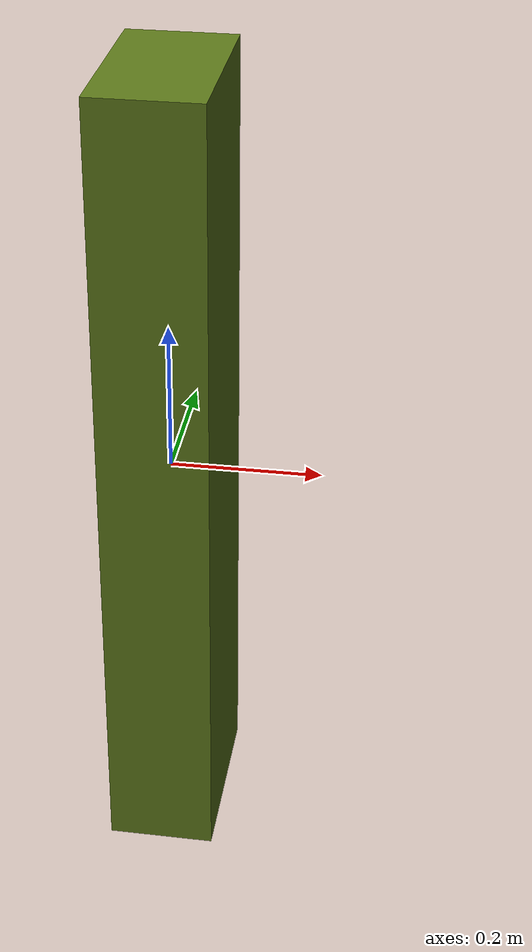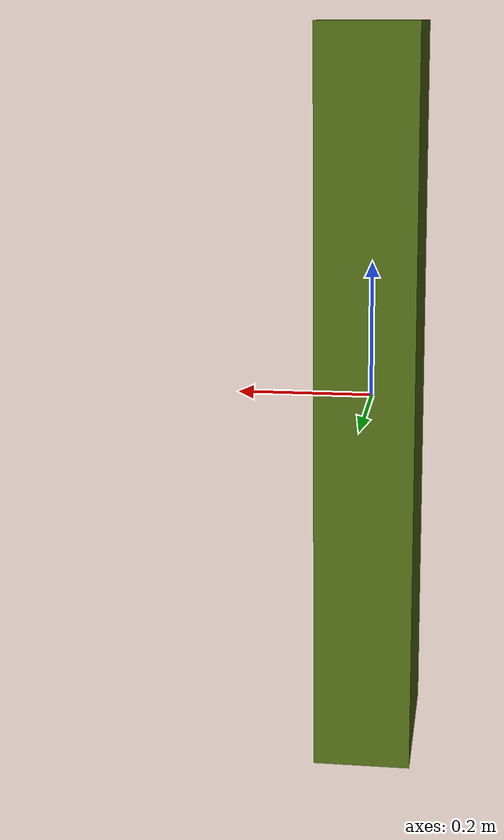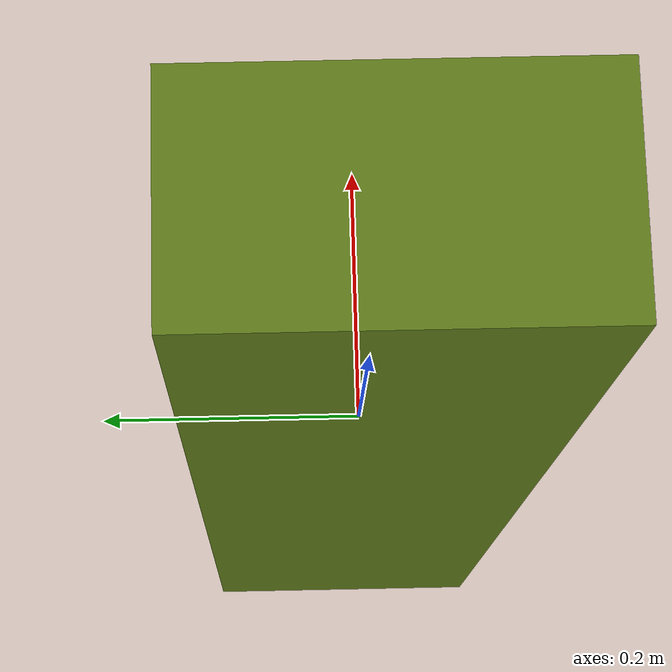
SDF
<sdf version="1.7">
  <model name="I">
    <link name="base_link">
      <inertial>
        <mass>1.0</mass>
        <inertia>
          <ixx>4.122e-01</ixx>
          <ixy>0.000e+00</ixy>
          <ixz>0.000e+00</ixz>
          <iyy>3.982e-01</iyy>
          <iyz>0.000e+00</iyz>
          <izz>2.769e-02</izz>
        </inertia>
      </inertial>
      <visual name="I_visual">
        <geometry>
          <mesh>
            <scale>1 1 1</scale>
            <uri>I_processed.obj</uri>
          </mesh>
        </geometry>
        <material>
          <diffuse>0.36 0.47 0.098 1.0</diffuse>
        </material>
      </visual>
      <collision name="I_collision">
        <pose>0.000e+00 0.000e+00 0.000e+00 0 0 0</pose>
        <geometry>
          <box>
            <size>2.868e-01 5.000e-01 2.167e+00</size>
          </box>
        </geometry>
      </collision>
    </link>
  </model>
</sdf>
